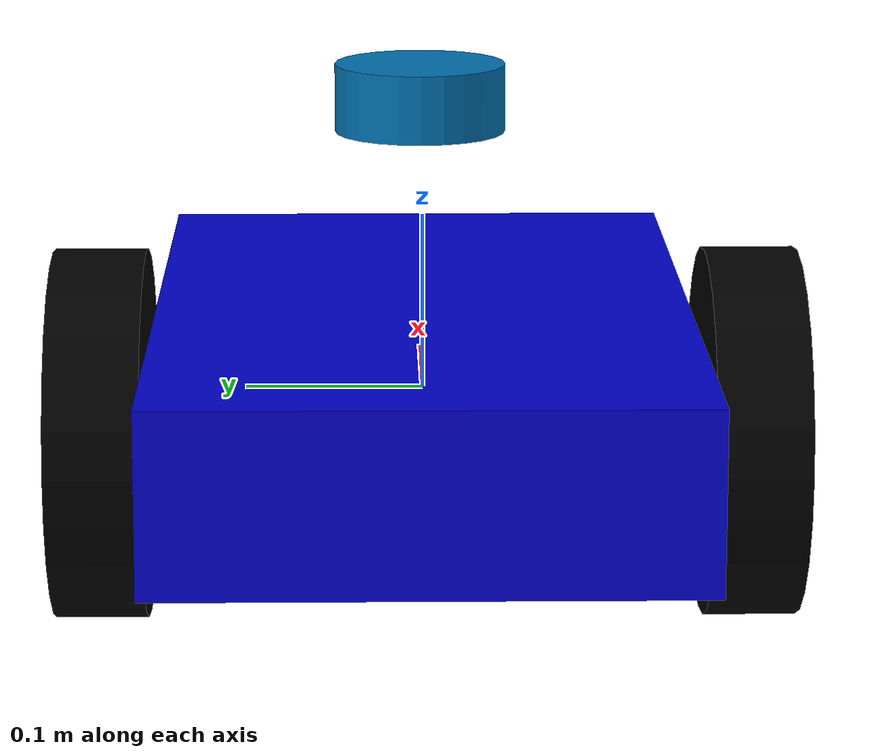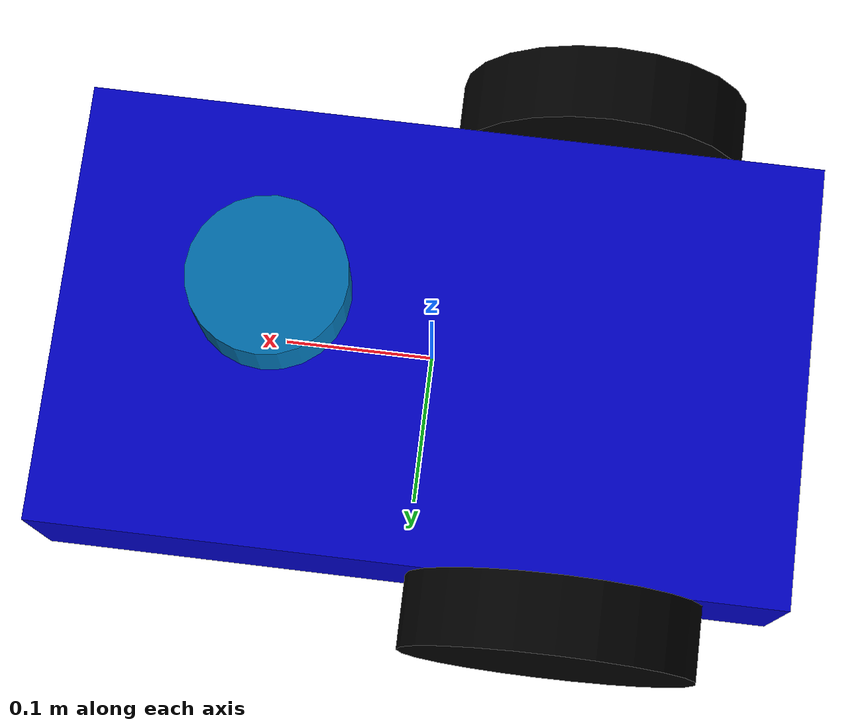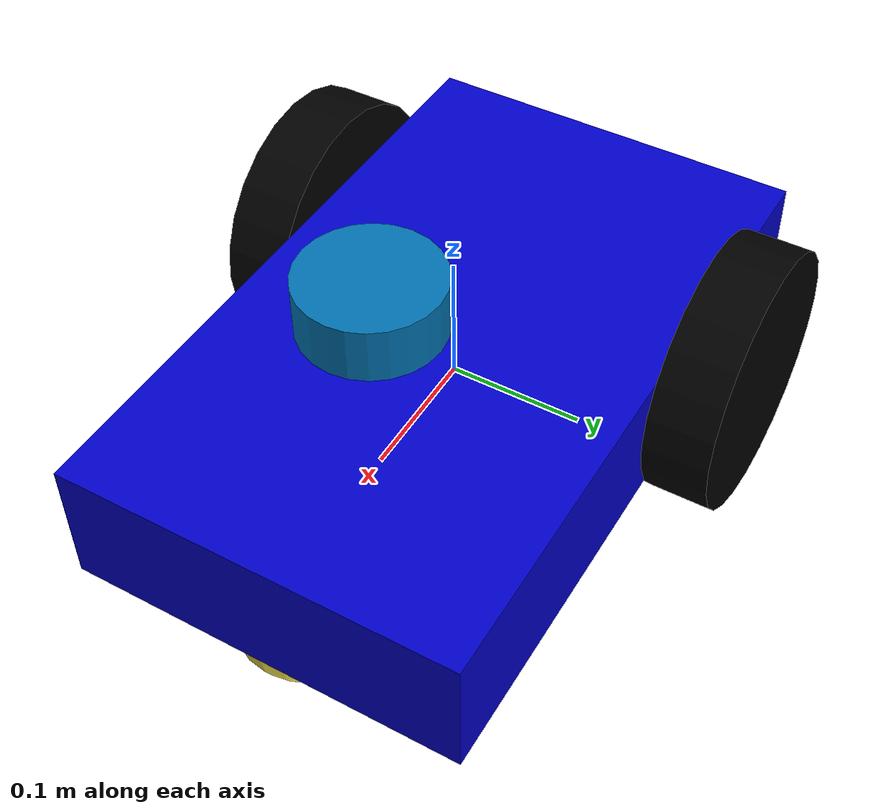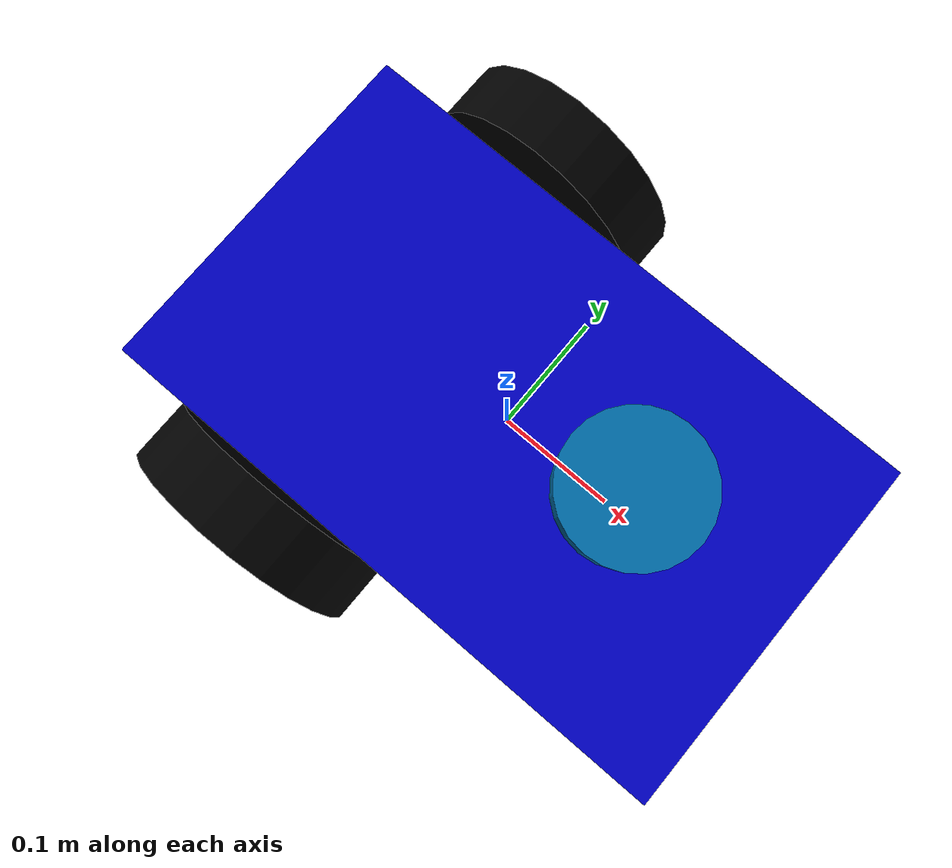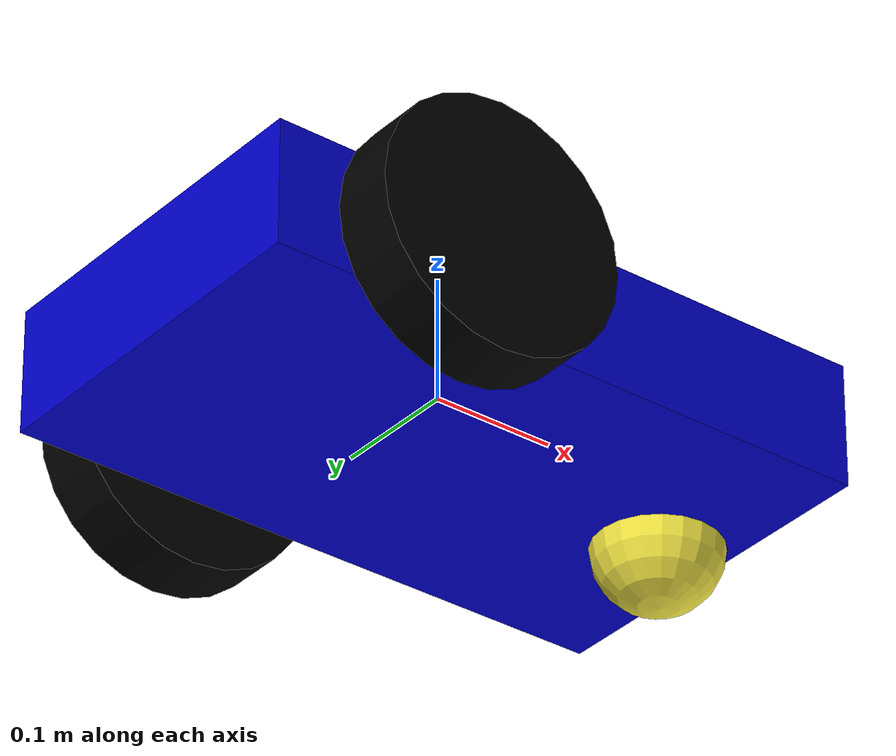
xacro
<?xml version="1.0"?>
<robot name="diff_bot" xmlns:xacro="http://www.ros.org">
  <material name="blue"> <color rgba="0 0 0.8 1"/> </material>
  <material name="black"> <color rgba="0 0 0 1"/> </material>

  <link name="base_link">
    <visual>
      <geometry><box size="0.5 0.3 0.1"/></geometry>
      <material name="blue"/>
    </visual>
    <collision>
      <geometry><box size="0.5 0.3 0.1"/></geometry>
    </collision>
    <inertial>
      <mass value="1.0"/>
      <inertia ixx="0.01" ixy="0" ixz="0" iyy="0.02" iyz="0" izz="0.02"/>
    </inertial>
  </link>

  <link name="left_wheel">
    <visual>
      <geometry><cylinder length="0.05" radius="0.1"/></geometry>
      <material name="black"/>
    </visual>
    <collision>
      <geometry><cylinder length="0.05" radius="0.1"/></geometry>
    </collision>
    <inertial>
      <mass value="0.2"/>
      <inertia ixx="0.0005" ixy="0" ixz="0" iyy="0.0005" iyz="0" izz="0.001"/>
    </inertial>
  </link>

  <joint name="left_wheel_joint" type="continuous">
    <parent link="base_link"/>
    <child link="left_wheel"/>
    <origin xyz="-0.1 0.175 0" rpy="-1.5708 0 0"/>
    <axis xyz="0 0 1"/>
  </joint>

  <link name="right_wheel">
    <visual>
      <geometry><cylinder length="0.05" radius="0.1"/></geometry>
      <material name="black"/>
    </visual>
    <collision>
      <geometry><cylinder length="0.05" radius="0.1"/></geometry>
    </collision>
    <inertial>
      <mass value="0.2"/>
      <inertia ixx="0.0005" ixy="0" ixz="0" iyy="0.0005" iyz="0" izz="0.001"/>
    </inertial>
  </link>

  <joint name="right_wheel_joint" type="continuous">
    <parent link="base_link"/>
    <child link="right_wheel"/>
    <origin xyz="-0.1 -0.175 0" rpy="-1.5708 0 0"/>
    <axis xyz="0 0 1"/>
  </joint>

  <link name="caster_wheel">
    <visual>
      <geometry><sphere radius="0.05"/></geometry>
    </visual>
    <collision>
      <geometry><sphere radius="0.05"/></geometry>
    </collision>
    <inertial>
      <mass value="0.1"/>
      <inertia ixx="0.0001" ixy="0" ixz="0" iyy="0.0001" iyz="0" izz="0.0001"/>
    </inertial>
  </link>

  <joint name="caster_joint" type="fixed">
    <parent link="base_link"/>
    <child link="caster_wheel"/>
    <origin xyz="0.2 0 -0.05" rpy="0 0 0"/>
  </joint>

  <gazebo reference="left_wheel">
    <mu1>1.0</mu1>
    <mu2>1.0</mu2>
  </gazebo>
  <gazebo reference="right_wheel">
    <mu1>1.0</mu1>
    <mu2>1.0</mu2>
  </gazebo>
  <gazebo reference="caster_wheel">
    <mu1>0.01</mu1>
    <mu2>0.01</mu2>
  </gazebo>

  <link name="lidar_link">
    <visual>
      <geometry><cylinder radius="0.05" length="0.04"/></geometry>
    </visual>
    <inertial>
      <mass value="0.1"/>
      <inertia ixx="0.0001" ixy="0" ixz="0" iyy="0.0001" iyz="0" izz="0.0001"/>
    </inertial>
  </link>
  <joint name="lidar_joint" type="fixed">
    <parent link="base_link"/>
    <child link="lidar_link"/>
    <origin xyz="0.1 0 0.15"/>
  </joint>

  <link name="imu_link">
    <inertial>
      <mass value="0.01"/>
      <inertia ixx="1e-5" ixy="0" ixz="0" iyy="1e-5" iyz="0" izz="1e-5"/>
    </inertial>
  </link>
  <joint name="imu_joint" type="fixed">
    <parent link="base_link"/>
    <child link="imu_link"/>
    <origin xyz="-0.1 0 0.05"/>
  </joint>

  <ros2_control name="GazeboSimSystem" type="system">
    <hardware>
      <plugin>gz_ros2_control/GazeboSimSystem</plugin>
    </hardware>
    <joint name="left_wheel_joint">
      <command_interface name="velocity" />
      <state_interface name="position" />
      <state_interface name="velocity" />
    </joint>
    <joint name="right_wheel_joint">
      <command_interface name="velocity" />
      <state_interface name="position" />
      <state_interface name="velocity" />
    </joint>
  </ros2_control>

  <gazebo>
    <plugin filename="gz_ros2_control-system" name="gz_ros2_control::GazeboSimROS2ControlPlugin">
      <parameters>CONTROLLER_PARAMS_FILE</parameters>
    </plugin>
  </gazebo>

  <gazebo reference="lidar_link">
    <sensor name="gpu_lidar" type="gpu_lidar">
      <gz_frame_id>lidar_link</gz_frame_id>
      <pose>0 0 0 0 0 0</pose>
      <topic>scan</topic>
      <update_rate>10</update_rate>
      <lidar>
        <scan>
          <horizontal>
            <samples>640</samples>
            <resolution>1</resolution>
            <min_angle>-3.14159</min_angle>
            <max_angle>3.14159</max_angle>
          </horizontal>
        </scan>
        <range>
          <min>0.08</min>
          <max>10.0</max>
          <resolution>0.01</resolution>
        </range>
        <noise>
          <type>gaussian</type>
          <mean>0.0</mean>
          <stddev>0.01</stddev>
        </noise>
      </lidar>
      <visualize>false</visualize>
    </sensor>
  </gazebo>

  <gazebo reference="imu_link">
    <sensor name="imu" type="imu">
      <always_on>1</always_on>
      <update_rate>50</update_rate>
      <visualize>false</visualize>
      <topic>imu</topic>
      <enable_metrics>true</enable_metrics>
      <gz_frame_id>imu_link</gz_frame_id>
    </sensor>
  </gazebo>

  <gazebo>
    <plugin
      filename="gz-sim-odometry-publisher-system"
      name="gz::sim::systems::OdometryPublisher">
      <dimensions>3</dimensions>
      <odom_topic>/sim/odom</odom_topic>
      <tf_topic>/sim/odom/tf</tf_topic>
    </plugin>
  </gazebo>
</robot>
